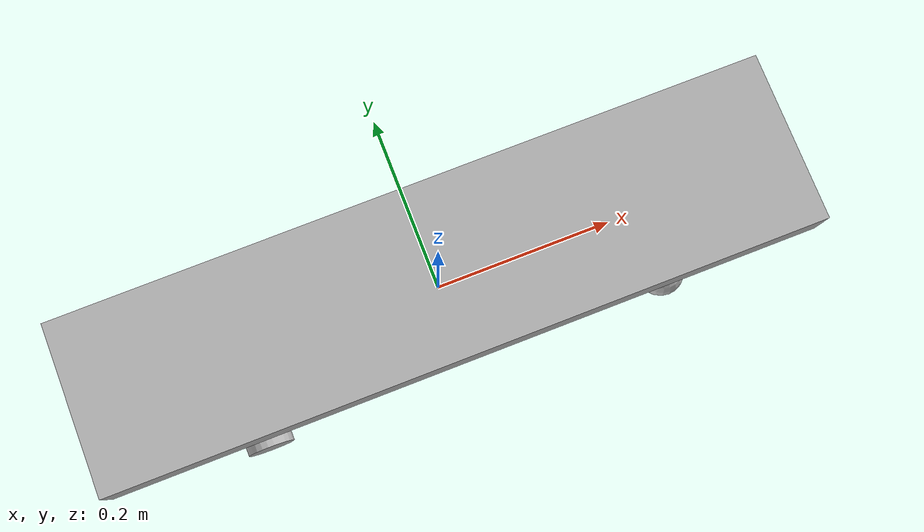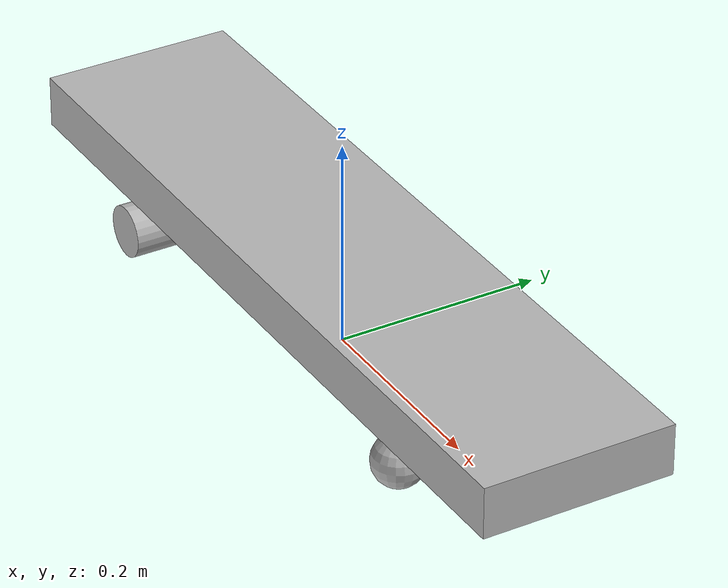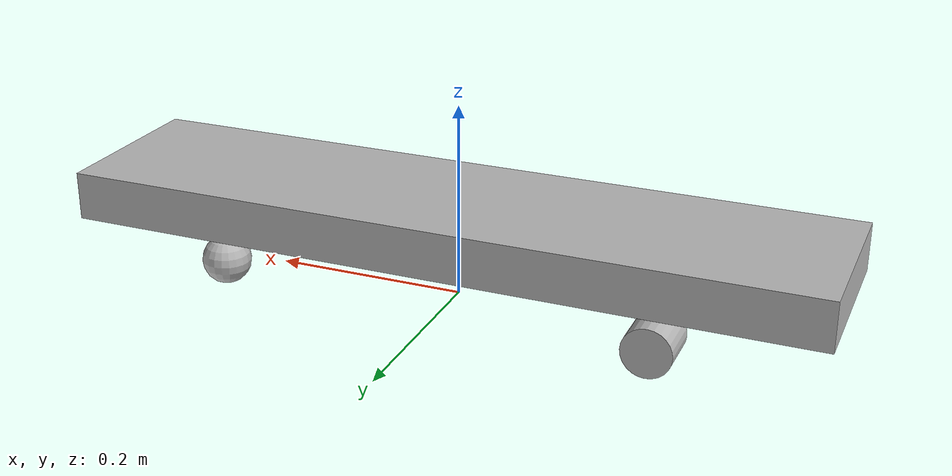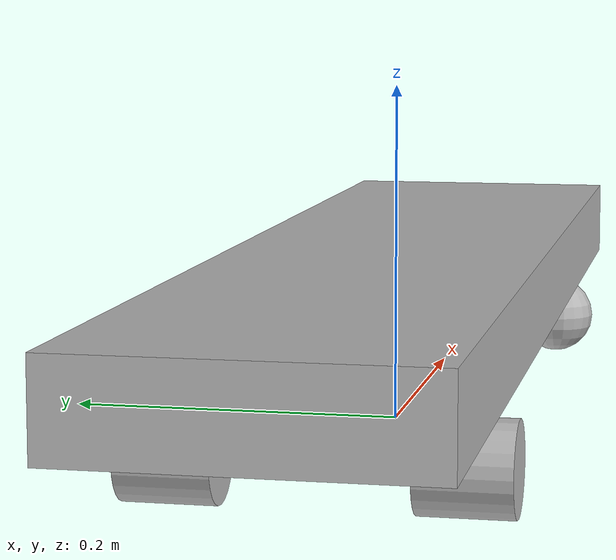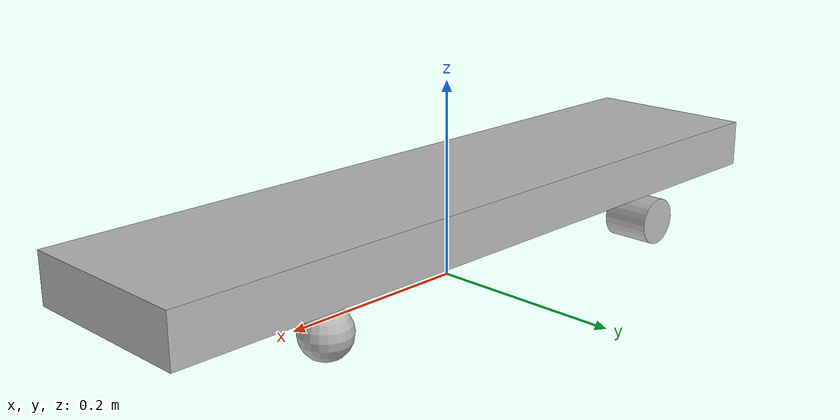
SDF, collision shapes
<?xml version='1.0'?>
<sdf version='1.4'>
  <model name="Coaster">
    <static>false</static>
<!-- LINKS -->
    <link name='deck'>
      <pose>0 0 .080 0 0 0</pose>

      <collision name='collision'>
        <geometry>
          <box>
            <size>.777 .185 .05</size>
          </box>
        </geometry>
      </collision>

      <visual name='visual'>
        <geometry>
          <mesh>
            <uri>model://coaster/meshes/skateboard_mesh.dae</uri>
          </mesh>
        </geometry>
      </visual>

      <collision name='right_caster_collision'>
        <pose>0.225 -0.075 -0.050 0 0 0</pose>
        <geometry>
            <sphere>
            <radius>.025</radius>
          </sphere>
        </geometry>

        <surface>
          <friction>
            <ode>
              <mu>0</mu>
              <mu2>0</mu2>
              <slip1>1.0</slip1>
              <slip2>1.0</slip2>
            </ode>
          </friction>
        </surface>
      </collision>

      <collision name='left_caster_collision'>
        <pose>0.225 0.075 -0.050 0 0 0</pose>
        <geometry>
            <sphere>
            <radius>.025</radius>
          </sphere>
        </geometry>

        <surface>
          <friction>
            <ode>
              <mu>0</mu>
              <mu2>0</mu2>
              <slip1>1.0</slip1>
              <slip2>1.0</slip2>
            </ode>
          </friction>
        </surface>
      </collision>

    </link>

<!-- 450 mm between wheels and 150 mm the other way -->
    <link name="left_wheel">
      <pose>-0.225 0.075 0.025 0 1.5707 1.5707</pose>
      <collision name="collision">
        <geometry>
          <cylinder>
            <radius>.025</radius>
            <length>.05</length>
          </cylinder>
        </geometry>
      </collision>
    </link>

    <link name="right_wheel">
      <pose>-0.225 -0.075 0.025 0 1.5707 1.5707</pose>
      <collision name="collision">
        <geometry>
          <cylinder>
            <radius>.025</radius>
            <length>.05</length>
          </cylinder>
        </geometry>
      </collision>
    </link>

<!-- JOINTS -->
    <joint type="revolute" name="left_wheel_hinge">
      <pose>0 0 -0.03 0 0 0</pose>
      <child>left_wheel</child>
      <parent>deck</parent>
      <axis>
        <xyz>0 1 0</xyz>
      </axis>
    </joint>

    <joint type="revolute" name="right_wheel_hinge">
      <pose>0 0 0.03 0 0 0</pose>
      <child>right_wheel</child>
      <parent>deck</parent>
      <axis>
        <xyz>0 1 0</xyz>
      </axis>
    </joint>
  </model>
</sdf>
